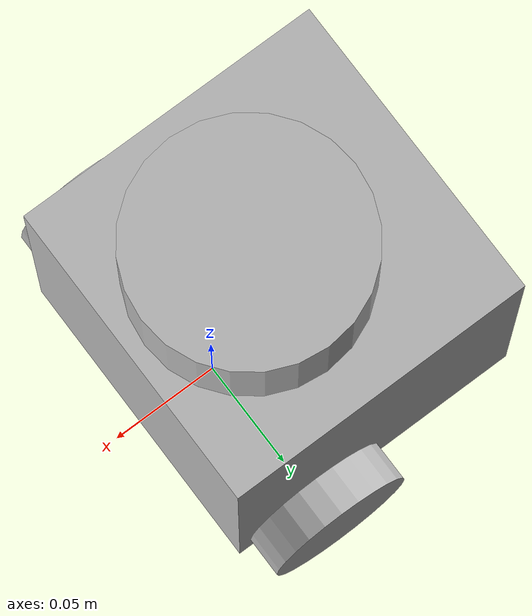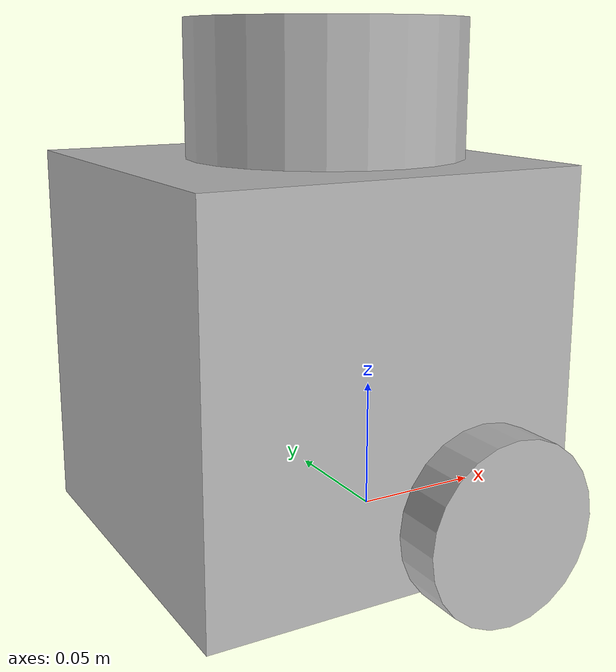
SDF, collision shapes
<?xml version="1.0" ?>
<sdf version="1.5">
  <model name="turtlebot3_burger">
    <pose>0.0 0.0 0.0 0.0 0.0 0.0</pose>

    <link name="base_footprint"/>

    <link name="base_link">

      <inertial>
        <pose>-0.032 0 0.070 0 0 0</pose>
        <inertia>
          <ixx>7.2397393e-01</ixx>
          <ixy>4.686399e-10</ixy>
          <ixz>-1.09525703e-08</ixz>
          <iyy>7.2397393e-01</iyy>
          <iyz>2.8582649e-09</iyz>
          <izz>6.53050163e-01</izz>
        </inertia>
        <mass>8.2573504e-01</mass>
      </inertial>

      <collision name="base_collision">
        <pose>-0.032 0 0.070 0 0 0</pose>
        <geometry>
          <box>
            <size>0.140 0.140 0.140</size>
          </box>
        </geometry>
      </collision>

      <visual name="base_visual">
        <pose>-0.032 0 0 0 0 0</pose>
        <geometry>
          <mesh>
            <uri>model://turtlebot3_common/meshes/burger_base.dae</uri>
            <scale>0.001 0.001 0.001</scale>
          </mesh>
        </geometry>
      </visual>
    </link>

    <link name="imu_link">
      <sensor name="tb3_imu" type="imu">
        <always_on>true</always_on>
        <update_rate>200</update_rate>
        <imu>
          <angular_velocity>
            <x>
              <noise type="gaussian">
                <mean>0.0</mean>
                <stddev>2e-4</stddev>
              </noise>
            </x>
            <y>
              <noise type="gaussian">
                <mean>0.0</mean>
                <stddev>2e-4</stddev>
              </noise>
            </y>
            <z>
              <noise type="gaussian">
                <mean>0.0</mean>
                <stddev>2e-4</stddev>
              </noise>
            </z>
          </angular_velocity>
          <linear_acceleration>
            <x>
              <noise type="gaussian">
                <mean>0.0</mean>
                <stddev>1.7e-2</stddev>
              </noise>
            </x>
            <y>
              <noise type="gaussian">
                <mean>0.0</mean>
                <stddev>1.7e-2</stddev>
              </noise>
            </y>
            <z>
              <noise type="gaussian">
                <mean>0.0</mean>
                <stddev>1.7e-2</stddev>
              </noise>
            </z>
          </linear_acceleration>
        </imu>
        <plugin name="turtlebot3_imu" filename="libgazebo_ros_imu_sensor.so">
          <ros>
            <remapping>~/out:=imu</remapping>
          </ros>
        </plugin>
      </sensor>
    </link>

    <link name="velodyne">
      <inertial>
        <pose>-0.020 0 0.161 0 0 0</pose>
        <inertia>
          <ixx>1e-7</ixx>
          <ixy>0.000</ixy>
          <ixz>0.000</ixz>
          <iyy>1e-7</iyy>
          <iyz>0.000</iyz>
          <izz>1e-7</izz>
        </inertia>
        <mass>0.114</mass>
      </inertial>

      <collision name="velodyne_sensor_collision">
        <pose>-0.020 0 0.161 0 0 0</pose>
        <geometry>
          <cylinder>
            <radius>0.0508</radius>
            <length>0.055</length>
          </cylinder>
        </geometry>
      </collision>

      <visual name="velodyne_sensor_visual">
        <pose>-0.032 0 0.171 0 0 0</pose>
        <geometry>
          <mesh>
            <uri>package://velodyne_description/meshes/VLP16_scan.dae</uri>
            <scale>0.001 0.001 0.001</scale>
          </mesh>
        </geometry>
      </visual>

      <sensor name="velodyne-VLP16" type="ray">
        <always_on>true</always_on>
        <visualize>false</visualize>
        <pose>-0.032 0 0.171 0 0 0</pose>
        <update_rate>10</update_rate>
        <ray>
          <scan>
            <horizontal>
              <samples>440</samples>
              <resolution>1.000000</resolution>
	      <min_angle>-3.141592653589793</min_angle>
              <max_angle>3.141592653589793</max_angle>
            </horizontal>
	    <vertical>
              <samples>32</samples>
              <resolution>1.000000</resolution>
              <min_angle>-0.5</min_angle>
              <max_angle>0.2617993877991494</max_angle>
            </vertical>
          </scan>
          <range>
            <min>0.1</min>
            <max>131.0</max>
            <resolution>0.001</resolution>
          </range>
          <noise>
            <type>gaussian</type>
            <mean>0.0</mean>
            <stddev>0.00</stddev>
          </noise>
        </ray>
        <plugin filename="libgazebo_ros_velodyne_laser.so" name="gazebo_ros_laser_controller">
          <ros>
            <namespace>/velodyne</namespace>
	    <remapping>~/out:=/velodyne_points</remapping>
          </ros>
          <output_type>sensor_msgs/PointCloud2</output_type>
          <frame_name>velodyne</frame_name>
	  <organize_cloud>False</organize_cloud>
          <min_range>0.1</min_range>
          <max_range>130.0</max_range>
          <gaussian_noise>0.008</gaussian_noise>
        </plugin>
      </sensor>
    </link>

    <link name="base_scan">
      <inertial>
        <pose>-0.020 0 0.161 0 0 0</pose>
        <inertia>
          <ixx>0.001</ixx>
          <ixy>0.000</ixy>
          <ixz>0.000</ixz>
          <iyy>0.001</iyy>
          <iyz>0.000</iyz>
          <izz>0.001</izz>
        </inertia>
        <mass>0.114</mass>
      </inertial>

      <collision name="lidar_sensor_collision">
        <pose>-0.020 0 0.161 0 0 0</pose>
        <geometry>
          <cylinder>
            <radius>0.0508</radius>
            <length>0.055</length>
          </cylinder>
        </geometry>
      </collision>

      <visual name="lidar_sensor_visual">
        <pose>-0.032 0 0.171 0 0 0</pose>
        <geometry>
          <mesh>
            <uri>model://turtlebot3_common/meshes/lds.dae</uri>
            <scale>0.001 0.001 0.001</scale>
          </mesh>
        </geometry>
      </visual>

     <sensor name="hls_lfcd_lds" type="ray">
        <always_on>true</always_on>
        <visualize>true</visualize>
        <pose>-0.032 0 0.171 0 0 0</pose>
        <update_rate>5</update_rate>
        <ray>
          <scan>
            <horizontal>
              <samples>360</samples>
              <resolution>1.000000</resolution>
              <min_angle>0.000000</min_angle>
              <max_angle>6.280000</max_angle>
            </horizontal>
          </scan>
          <range>
            <min>0.120000</min>
            <max>3.5</max>
            <resolution>0.015000</resolution>
          </range>
          <noise>
            <type>gaussian</type>
            <mean>0.0</mean>
            <stddev>0.01</stddev>
          </noise>
        </ray>
        <plugin name="turtlebot3_laserscan" filename="libgazebo_ros_ray_sensor.so">
          <ros>
            <remapping>~/out:=scan</remapping>
          </ros>
          <output_type>sensor_msgs/LaserScan</output_type>
          <frame_name>base_scan</frame_name>
        </plugin>
      </sensor>
    </link>

    <link name="wheel_left_link">

      <inertial>
        <pose>0 0.08 0.023 -1.57 0 0</pose>
        <inertia>
          <ixx>1.8158194e-03</ixx>
          <ixy>-9.3392e-12</ixy>
          <ixz>1.04909e-11</ixz>
          <iyy>3.2922126e-03</iyy>
          <iyz>5.75694e-11</iyz>
          <izz>1.8158194e-03</izz>
        </inertia>
        <mass>2.8498940e-02</mass>
      </inertial>

      <collision name="wheel_left_collision">
        <pose>0 0.08 0.023 -1.57 0 0</pose>
        <geometry>
          <cylinder>
            <radius>0.033</radius>
            <length>0.018</length>
          </cylinder>
        </geometry>
        <surface>
          <!-- This friction pamareter don't contain reliable data!! -->
          <friction>
            <ode>
              <mu>100000.0</mu>
              <mu2>100000.0</mu2>
              <fdir1>0 0 0</fdir1>
              <slip1>0.0</slip1>
              <slip2>0.0</slip2>
            </ode>
          </friction>
          <contact>
            <ode>
              <soft_cfm>0</soft_cfm>
              <soft_erp>0.2</soft_erp>
              <kp>1e+5</kp>
              <kd>1</kd>
              <max_vel>0.01</max_vel>
              <min_depth>0.001</min_depth>
            </ode>
          </contact>
        </surface>
      </collision>

      <visual name="wheel_left_visual">
        <pose>0 0.08 0.023 0 0 0</pose>
        <geometry>
          <mesh>
            <uri>model://turtlebot3_common/meshes/tire.dae</uri>
            <scale>0.001 0.001 0.001</scale>
          </mesh>
        </geometry>
      </visual>
    </link>

    <link name="wheel_right_link">

      <inertial>
        <pose>0.0 -0.08 0.023 -1.57 0 0</pose>
        <inertia>
          <ixx>1.8158194e-03</ixx>
          <ixy>-9.3392e-12</ixy>
          <ixz>1.04909e-11</ixz>
          <iyy>3.2922126e-03</iyy>
          <iyz>5.75694e-11</iyz>
          <izz>1.8158194e-03</izz>
        </inertia>
        <mass>2.8498940e-02</mass>
      </inertial>

      <collision name="wheel_right_collision">
        <pose>0.0 -0.08 0.023 -1.57 0 0</pose>
        <geometry>
          <cylinder>
            <radius>0.033</radius>
            <length>0.018</length>
          </cylinder>
        </geometry>
        <surface>
          <!-- This friction pamareter don't contain reliable data!! -->
          <friction>
            <ode>
              <mu>100000.0</mu>
              <mu2>100000.0</mu2>
              <fdir1>0 0 0</fdir1>
              <slip1>0.0</slip1>
              <slip2>0.0</slip2>
            </ode>
          </friction>
          <contact>
            <ode>
              <soft_cfm>0</soft_cfm>
              <soft_erp>0.2</soft_erp>
              <kp>1e+5</kp>
              <kd>1</kd>
              <max_vel>0.01</max_vel>
              <min_depth>0.001</min_depth>
            </ode>
          </contact>
        </surface>
      </collision>

      <visual name="wheel_right_visual">
        <pose>0.0 -0.08 0.023 0 0 0</pose>
        <geometry>
          <mesh>
            <uri>model://turtlebot3_common/meshes/tire.dae</uri>
            <scale>0.001 0.001 0.001</scale>
          </mesh>
        </geometry>
      </visual>
    </link>

    <link name='caster_back_link'>
      <pose>-0.081 0 -0.004 -1.57 0 0</pose>
      <inertial>
        <mass>0.005</mass>
        <inertia>
          <ixx>0.001</ixx>
          <ixy>0.000</ixy>
          <ixz>0.000</ixz>
          <iyy>0.001</iyy>
          <iyz>0.000</iyz>
          <izz>0.001</izz>
        </inertia>
      </inertial>
      <collision name='collision'>
        <geometry>
          <sphere>
            <radius>0.005000</radius>
          </sphere>
        </geometry>
        <surface>
          <contact>
            <ode>
              <soft_cfm>0</soft_cfm>
              <soft_erp>0.2</soft_erp>
              <kp>1e+5</kp>
              <kd>1</kd>
              <max_vel>0.01</max_vel>
              <min_depth>0.001</min_depth>
            </ode>
          </contact>
        </surface>
      </collision>
    </link>

    <joint name="base_joint" type="fixed">
      <parent>base_footprint</parent>
      <child>base_link</child>
      <pose>0.0 0.0 0.010 0 0 0</pose>
    </joint>

    <joint name="wheel_left_joint" type="revolute">
      <parent>base_link</parent>
      <child>wheel_left_link</child>
      <pose>0.0 0.08 0.023 -1.57 0 0</pose>
      <axis>
        <xyz>0 0 1</xyz>
      </axis>
    </joint>

    <joint name="wheel_right_joint" type="revolute">
      <parent>base_link</parent>
      <child>wheel_right_link</child>
      <pose>0.0 -0.08 0.023 -1.57 0 0</pose>
      <axis>
        <xyz>0 0 1</xyz>
      </axis>
    </joint>

    <joint name='caster_back_joint' type='ball'>
      <parent>base_link</parent>
      <child>caster_back_link</child>
    </joint>

    <joint name="imu_joint" type="fixed">
      <parent>base_link</parent>
      <child>imu_link</child>
      <pose>-0.032 0 0.068 0 0 0</pose>
      <axis>
        <xyz>0 0 1</xyz>
      </axis>
    </joint>

    <joint name="lidar_joint" type="fixed">
      <parent>base_link</parent>
      <child>base_scan</child>
      <pose>-0.032 0 0.171 0 0 0</pose>
      <axis>
        <xyz>0 0 1</xyz>
      </axis>
    </joint>

    <joint name="velodyne_joint" type="fixed">
      <parent>base_link</parent>
      <child>velodyne</child>
      <pose>-0.032 0 0.171 0 0 0</pose>
      <axis>
        <xyz>0 0 1</xyz>
      </axis>
    </joint>

    <plugin name="turtlebot3_diff_drive" filename="libgazebo_ros_diff_drive.so">

      <ros>
      </ros>

      <update_rate>30</update_rate>

      <!-- wheels -->
      <left_joint>wheel_left_joint</left_joint>
      <right_joint>wheel_right_joint</right_joint>

      <!-- kinematics -->
      <wheel_separation>0.160</wheel_separation>
      <wheel_diameter>0.066</wheel_diameter>

      <!-- limits -->
      <max_wheel_torque>20</max_wheel_torque>
      <max_wheel_acceleration>1.0</max_wheel_acceleration>

      <command_topic>cmd_vel</command_topic>

      <!-- output -->
      <publish_odom>true</publish_odom>
      <publish_odom_tf>true</publish_odom_tf>
      <publish_wheel_tf>false</publish_wheel_tf>

      <odometry_topic>odom</odometry_topic>
      <odometry_frame>odom</odometry_frame>
      <robot_base_frame>base_footprint</robot_base_frame>

    </plugin>

    <plugin name="turtlebot3_joint_state" filename="libgazebo_ros_joint_state_publisher.so">
      <ros>
        <remapping>~/out:=joint_states</remapping>
      </ros>
      <update_rate>30</update_rate>
      <joint_name>wheel_left_joint</joint_name>
      <joint_name>wheel_right_joint</joint_name>
    </plugin>

    <plugin name="libgazebo_ros_p3d" filename="libgazebo_ros_p3d.so">
        <ros>
	   <namespace>/ground_truth</namespace>
	   <remapping>/ground_truth/odom:=/ground_truth</remapping>
        </ros>
        <frame_name>world</frame_name>
        <body_name>base_link</body_name>
        <update_rate>30.0</update_rate>
        <gaussian_noise>0.0</gaussian_noise>
	<xyzOffsets>0 0 0</xyzOffsets>
        <rpyOffsets>0 0 0</rpyOffsets>
    </plugin>

  </model>
</sdf>
